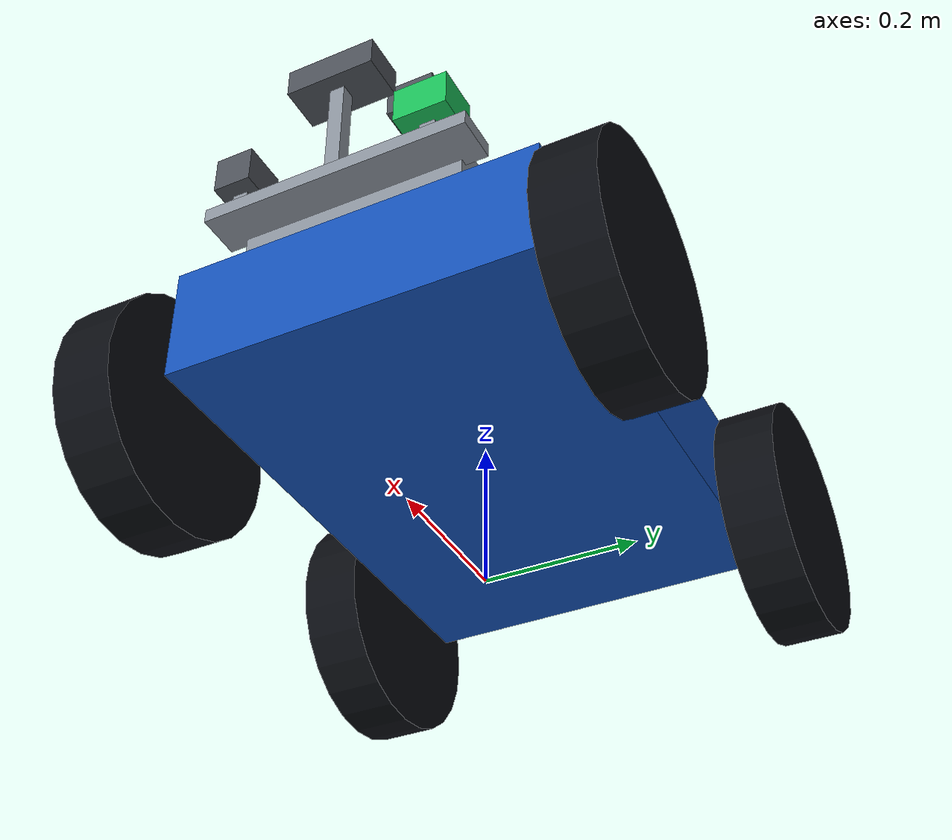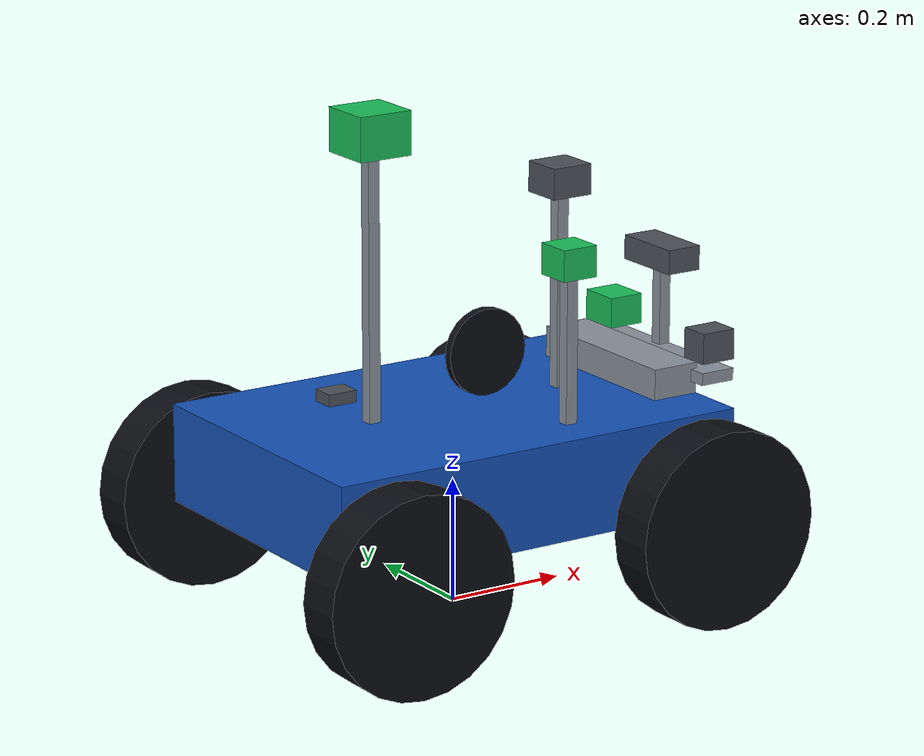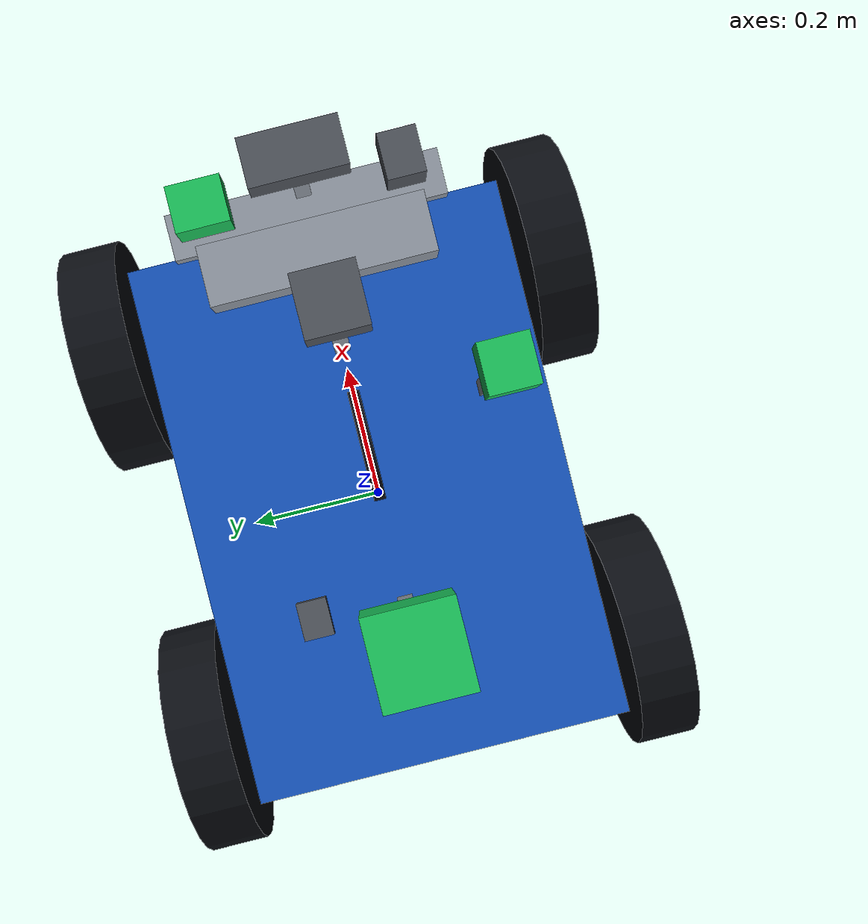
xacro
<?xml version="1.0"?>
<robot xmlns:xacro="http://www.ros.org/wiki/xacro" name="sensor_bot">
  <!-- 기존 4륜 Ackermann 차량에 센서를 조합한다. -->
  <xacro:include filename="$(find gazebo_tutorial_description)/urdf/macros/ackermann_rover.xacro"/>
  <xacro:include filename="$(find gazebo_tutorial_description)/urdf/sensors/sensor_common.xacro"/>
  <xacro:include filename="$(find gazebo_tutorial_description)/urdf/sensors/imu_sensor.xacro"/>
  <xacro:include filename="$(find gazebo_tutorial_description)/urdf/sensors/mono_rgb_camera.xacro"/>
  <xacro:include filename="$(find gazebo_tutorial_description)/urdf/sensors/stereo_camera.xacro"/>
  <xacro:include filename="$(find gazebo_tutorial_description)/urdf/sensors/rgbd_camera.xacro"/>
  <xacro:include filename="$(find gazebo_tutorial_description)/urdf/sensors/fisheye_camera.xacro"/>
  <xacro:include filename="$(find gazebo_tutorial_description)/urdf/sensors/lidar_2d.xacro"/>
  <xacro:include filename="$(find gazebo_tutorial_description)/urdf/sensors/lidar_3d.xacro"/>

  <xacro:arg name="sensor_profile" default="all"/>
  <xacro:property name="sensor_profile" value="$(arg sensor_profile)"/>
  <xacro:property name="enable_cameras"
    value="${sensor_profile == 'all' or sensor_profile == 'cameras'}"/>
  <xacro:property name="enable_lidars"
    value="${sensor_profile == 'all' or sensor_profile == 'lidars'}"/>

  <!-- rover_ackermann와 같은 앞바퀴 조향·뒷바퀴 구동 구조다.
       /cmd_vel의 angular.z는 조향각 [rad]이며 yaw rate가 아니다. -->
  <xacro:ackermann_rover/>

  <material name="sensor_gray">
    <color rgba="0.30 0.32 0.35 1.0"/>
  </material>
  <material name="sensor_green">
    <color rgba="0.10 0.75 0.35 1.0"/>
  </material>

  <!-- 센서 본체와 지지대는 시각 요소와 관성을 갖는다. 기존 센서 장착
       매크로처럼 충돌 형상은 생략하므로 라이다 광선을 스스로 가리지 않는다. -->
  <xacro:if value="${enable_cameras}">
    <xacro:sensor_mount_box
      link_name="camera_mount_rail_link" parent="base_link" xyz="0.38 0 0.11"
      size_x="0.06" size_y="0.36" size_z="0.02" color="rover_metal"/>
    <xacro:sensor_mount_box
      link_name="mono_camera_support_link" parent="base_link" xyz="0.40 -0.13 0.1225"
      size_x="0.02" size_y="0.02" size_z="0.005" color="rover_metal" mass="0.01"/>
    <xacro:sensor_mount_box
      link_name="rgbd_camera_support_link" parent="base_link" xyz="0.40 0.13 0.1225"
      size_x="0.02" size_y="0.02" size_z="0.005" color="rover_metal" mass="0.01"/>
    <xacro:sensor_mount_box
      link_name="stereo_camera_support_link" parent="base_link" xyz="0.40 0 0.185"
      size_x="0.02" size_y="0.02" size_z="0.13" color="rover_metal"/>
    <xacro:sensor_mount_box
      link_name="fisheye_camera_support_link" parent="base_link" xyz="0.10 -0.17 0.1975"
      size_x="0.02" size_y="0.02" size_z="0.235" color="rover_metal"/>
  </xacro:if>

  <xacro:if value="${enable_lidars}">
    <xacro:sensor_mount_box
      link_name="lidar_2d_support_link" parent="base_link" xyz="0.20 0 0.2375"
      size_x="0.02" size_y="0.02" size_z="0.315" color="rover_metal"/>
    <xacro:sensor_mount_box
      link_name="lidar_3d_support_link" parent="base_link" xyz="-0.15 0 0.2925"
      size_x="0.02" size_y="0.02" size_z="0.425" color="rover_metal"/>
  </xacro:if>

  <!-- IMU는 모든 프로필에서 사용한다. -->
  <xacro:gazebo_imu_sensor
    prefix="imu" parent="base_link" xyz="-0.14 0.12 0.09"
    topic="imu/data" update_rate="100.0"
    angular_stddev="0.0002" linear_stddev="0.017"/>

  <xacro:if value="${enable_cameras}">
    <xacro:gazebo_mono_rgb_camera
      prefix="camera" parent="base_link" xyz="0.40 -0.13 0.15"
      camera_name="camera" format="L8" update_rate="15.0"/>

    <xacro:gazebo_stereo_camera
      prefix="stereo_camera" parent="base_link" xyz="0.40 0 0.27"
      camera_name="stereo" baseline="0.08" update_rate="10.0"/>

    <xacro:gazebo_rgbd_camera
      prefix="rgbd_camera" parent="base_link" xyz="0.40 0.13 0.15"
      camera_name="rgbd" min_depth="0.10" max_depth="12.0" update_rate="10.0"/>

    <xacro:gazebo_fisheye_camera
      prefix="fisheye_camera" parent="base_link" xyz="0.10 -0.17 0.34"
      camera_name="fisheye" horizontal_fov="3.1415926535"
      lens_type="equidistant" env_texture_size="512" update_rate="10.0"/>
  </xacro:if>

  <xacro:if value="${enable_lidars}">
    <xacro:gazebo_lidar_2d
      prefix="lidar_2d" parent="base_link" xyz="0.20 0 0.42"
      topic="scan" samples="720" update_rate="15.0"/>

    <xacro:gazebo_lidar_3d
      prefix="lidar_3d" parent="base_link" xyz="-0.15 0 0.54"
      topic="points" horizontal_samples="360" vertical_samples="16"
      update_rate="10.0"/>
  </xacro:if>
</robot>

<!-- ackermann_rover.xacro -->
<robot xmlns:xacro="http://www.ros.org/wiki/xacro">
  <xacro:include filename="$(find gazebo_tutorial_description)/urdf/macros/rover_macros.xacro"/>

  <!-- 기본 주행 차량과 센서 차량이 차체, 바퀴, 조향, 구동 설정을 함께 사용한다. -->
  <xacro:macro name="ackermann_rover" params="">
    <xacro:rover_base body_mass="12.0"/>

    <!-- 앞바퀴는 수직축 조향 관절과 자유롭게 구르는 바퀴 관절로 나눈다. -->
    <xacro:steered_wheel
      prefix="front_left" parent="base_link"
      x="${rover_wheelbase / 2.0}" y="${rover_track_width / 2.0}" z="-0.08"/>
    <xacro:steered_wheel
      prefix="front_right" parent="base_link"
      x="${rover_wheelbase / 2.0}" y="-${rover_track_width / 2.0}" z="-0.08"/>

    <!-- 뒷바퀴는 플러그인의 토크로 구동한다. -->
    <xacro:fixed_axle_wheel
      prefix="rear_left" parent="base_link"
      x="-${rover_wheelbase / 2.0}" y="${rover_track_width / 2.0}" z="-0.08"/>
    <xacro:fixed_axle_wheel
      prefix="rear_right" parent="base_link"
      x="-${rover_wheelbase / 2.0}" y="-${rover_track_width / 2.0}" z="-0.08"/>

    <!-- steering_wheel_joint와 핸들 링크를 함께 정의하면 플러그인 시작 시
         "joint not found" 경고가 발생하지 않고 핸들의 움직임도 관찰할 수 있다. -->
    <link name="steering_wheel_link">
      <visual>
        <origin rpy="${PI / 2.0} 0 0"/>
        <geometry>
          <cylinder radius="0.07" length="0.015"/>
        </geometry>
        <material name="rover_dark"/>
      </visual>
      <xacro:wheel_inertial mass="0.05" radius="0.07" width="0.015"/>
    </link>
    <joint name="steering_wheel_joint" type="revolute">
      <parent link="base_link"/>
      <child link="steering_wheel_link"/>
      <origin xyz="0.06 0 0.16" rpy="0 0 0"/>
      <axis xyz="0 1 0"/>
      <limit lower="-7.85" upper="7.85" effort="1.0" velocity="10.0"/>
    </joint>

    <gazebo>
      <plugin name="rover_ackermann_drive" filename="libgazebo_ros_ackermann_drive.so">
        <ros>
          <namespace>/</namespace>
          <remapping>cmd_vel:=cmd_vel</remapping>
          <!-- 내장 오도메트리는 월드 좌표이므로 바퀴로 계산한 오도메트리와 구분한다. -->
          <remapping>odom:=ground_truth/odom</remapping>
        </ros>

        <!-- Humble의 gazebo_ros_ackermann_drive.cpp가 읽는 관절 이름 -->
        <front_left_joint>front_left_wheel_joint</front_left_joint>
        <front_right_joint>front_right_wheel_joint</front_right_joint>
        <rear_left_joint>rear_left_wheel_joint</rear_left_joint>
        <rear_right_joint>rear_right_wheel_joint</rear_right_joint>
        <left_steering_joint>front_left_steering_joint</left_steering_joint>
        <right_steering_joint>front_right_steering_joint</right_steering_joint>
        <steering_wheel_joint>steering_wheel_joint</steering_wheel_joint>

        <max_speed>2.0</max_speed>
        <max_steer>0.60</max_steer>
        <max_steering_angle>7.85</max_steering_angle>

        <left_steering_pid_gain>80 0 2</left_steering_pid_gain>
        <left_steering_i_range>0 0</left_steering_i_range>
        <right_steering_pid_gain>80 0 2</right_steering_pid_gain>
        <right_steering_i_range>0 0</right_steering_i_range>
        <linear_velocity_pid_gain>20 0 0.5</linear_velocity_pid_gain>
        <linear_velocity_i_range>0 0</linear_velocity_i_range>
        <update_rate>100</update_rate>

        <publish_odom>true</publish_odom>
        <!-- 별도 ackermann_odom 노드만 odom → base_footprint TF를 발행한다. -->
        <publish_odom_tf>false</publish_odom_tf>
        <publish_wheel_tf>false</publish_wheel_tf>
        <publish_distance>true</publish_distance>
        <odometry_frame>world</odometry_frame>
        <robot_base_frame>base_footprint</robot_base_frame>
        <covariance_x>0.001</covariance_x>
        <covariance_y>0.001</covariance_y>
        <covariance_yaw>0.01</covariance_yaw>
      </plugin>
    </gazebo>

    <gazebo>
      <plugin name="rover_ackermann_joint_states" filename="libgazebo_ros_joint_state_publisher.so">
        <ros>
          <namespace>/</namespace>
        </ros>
        <update_rate>50</update_rate>
        <joint_name>front_left_steering_joint</joint_name>
        <joint_name>front_right_steering_joint</joint_name>
        <joint_name>front_left_wheel_joint</joint_name>
        <joint_name>front_right_wheel_joint</joint_name>
        <joint_name>rear_left_wheel_joint</joint_name>
        <joint_name>rear_right_wheel_joint</joint_name>
        <joint_name>steering_wheel_joint</joint_name>
      </plugin>
    </gazebo>
  </xacro:macro>
</robot>

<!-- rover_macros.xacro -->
<robot xmlns:xacro="http://www.ros.org/wiki/xacro">
  <!-- 4륜 로버 두 모델이 공유하는 치수와 관성 매크로 -->
  <xacro:property name="rover_wheel_radius" value="0.16"/>
  <xacro:property name="rover_wheel_width" value="0.08"/>
  <xacro:property name="rover_track_width" value="0.62"/>
  <xacro:property name="rover_wheelbase" value="0.56"/>
  <xacro:property name="PI" value="3.141592653589793"/>

  <material name="rover_blue">
    <color rgba="0.08 0.32 0.72 1"/>
  </material>
  <material name="rover_dark">
    <color rgba="0.04 0.05 0.07 1"/>
  </material>
  <material name="rover_metal">
    <color rgba="0.55 0.58 0.62 1"/>
  </material>

  <xacro:macro name="box_inertial" params="mass x y z">
    <inertial>
      <mass value="${mass}"/>
      <inertia
        ixx="${mass * (y * y + z * z) / 12.0}"
        ixy="0.0"
        ixz="0.0"
        iyy="${mass * (x * x + z * z) / 12.0}"
        iyz="0.0"
        izz="${mass * (x * x + y * y) / 12.0}"/>
    </inertial>
  </xacro:macro>

  <!-- 실린더 geometry의 기본 대칭축은 local z축이다. visual/collision을 x축으로
       90도 돌리므로 관성도 대칭축이 rover의 y축을 향하도록 적는다. -->
  <xacro:macro name="wheel_inertial" params="mass radius width">
    <inertial>
      <mass value="${mass}"/>
      <inertia
        ixx="${mass * (3.0 * radius * radius + width * width) / 12.0}"
        ixy="0.0"
        ixz="0.0"
        iyy="${mass * radius * radius / 2.0}"
        iyz="0.0"
        izz="${mass * (3.0 * radius * radius + width * width) / 12.0}"/>
    </inertial>
  </xacro:macro>

  <xacro:macro name="rover_base" params="body_mass:=12.0">
    <!-- base_footprint는 바닥 투영점이며 질량/충돌이 없는 TF 전용 링크다. -->
    <link name="base_footprint"/>

    <link name="base_link">
      <visual>
        <geometry>
          <box size="0.72 0.50 0.16"/>
        </geometry>
        <material name="rover_blue"/>
      </visual>
      <collision>
        <geometry>
          <box size="0.72 0.50 0.16"/>
        </geometry>
      </collision>
      <xacro:box_inertial mass="${body_mass}" x="0.72" y="0.50" z="0.16"/>
    </link>

    <joint name="base_footprint_joint" type="fixed">
      <parent link="base_footprint"/>
      <child link="base_link"/>
      <origin xyz="0 0 0.24" rpy="0 0 0"/>
    </joint>

    <!-- 진행 방향(+x)을 쉽게 알아볼 수 있는 전방 표식 -->
    <link name="front_marker_link">
      <visual>
        <geometry>
          <box size="0.08 0.30 0.05"/>
        </geometry>
        <material name="rover_metal"/>
      </visual>
      <xacro:box_inertial mass="0.05" x="0.08" y="0.30" z="0.05"/>
    </link>
    <joint name="front_marker_joint" type="fixed">
      <parent link="base_link"/>
      <child link="front_marker_link"/>
      <origin xyz="0.32 0 0.105" rpy="0 0 0"/>
    </joint>
  </xacro:macro>

  <xacro:macro name="rover_wheel_link" params="name">
    <link name="${name}">
      <visual>
        <origin xyz="0 0 0" rpy="${PI / 2.0} 0 0"/>
        <geometry>
          <cylinder radius="${rover_wheel_radius}" length="${rover_wheel_width}"/>
        </geometry>
        <material name="rover_dark"/>
      </visual>
      <!-- Ackermann 플러그인은 wheel joint child의 첫 collision에서 반지름과
           바퀴 중심을 읽는다. 따라서 wheel link에는 collision을 정확히 하나 둔다. -->
      <collision>
        <origin xyz="0 0 0" rpy="${PI / 2.0} 0 0"/>
        <geometry>
          <cylinder radius="${rover_wheel_radius}" length="${rover_wheel_width}"/>
        </geometry>
      </collision>
      <xacro:wheel_inertial mass="0.8" radius="${rover_wheel_radius}" width="${rover_wheel_width}"/>
    </link>

    <gazebo reference="${name}">
      <material>Gazebo/Black</material>
      <mu1>1.2</mu1>
      <mu2>1.2</mu2>
      <kp>1000000.0</kp>
      <kd>10.0</kd>
      <minDepth>0.001</minDepth>
    </gazebo>
  </xacro:macro>

  <xacro:macro name="fixed_axle_wheel" params="prefix parent x y z">
    <xacro:rover_wheel_link name="${prefix}_wheel_link"/>
    <joint name="${prefix}_wheel_joint" type="continuous">
      <parent link="${parent}"/>
      <child link="${prefix}_wheel_link"/>
      <origin xyz="${x} ${y} ${z}" rpy="0 0 0"/>
      <axis xyz="0 1 0"/>
      <limit effort="40.0" velocity="30.0"/>
      <dynamics damping="0.05" friction="0.0"/>
    </joint>
  </xacro:macro>

  <xacro:macro name="steered_wheel" params="prefix parent x y z">
    <!-- URDF에는 universal joint가 없으므로 조향과 구름을 두 joint로 분리한다. -->
    <link name="${prefix}_steering_link">
      <visual>
        <geometry>
          <box size="0.06 0.06 0.10"/>
        </geometry>
        <material name="rover_metal"/>
      </visual>
      <collision>
        <geometry>
          <box size="0.06 0.06 0.10"/>
        </geometry>
      </collision>
      <xacro:box_inertial mass="0.15" x="0.06" y="0.06" z="0.10"/>
    </link>
    <joint name="${prefix}_steering_joint" type="revolute">
      <parent link="${parent}"/>
      <child link="${prefix}_steering_link"/>
      <origin xyz="${x} ${y} ${z}" rpy="0 0 0"/>
      <axis xyz="0 0 1"/>
      <!-- max_steer=0.60 rad일 때 안쪽 바퀴 목표각은 약 0.833 rad이다. -->
      <limit lower="-1.0" upper="1.0" effort="40.0" velocity="2.0"/>
      <dynamics damping="0.3" friction="0.1"/>
    </joint>

    <xacro:rover_wheel_link name="${prefix}_wheel_link"/>
    <joint name="${prefix}_wheel_joint" type="continuous">
      <parent link="${prefix}_steering_link"/>
      <child link="${prefix}_wheel_link"/>
      <origin xyz="0 0 0" rpy="0 0 0"/>
      <axis xyz="0 1 0"/>
      <limit effort="40.0" velocity="30.0"/>
      <dynamics damping="0.05" friction="0.0"/>
    </joint>
  </xacro:macro>

</robot>

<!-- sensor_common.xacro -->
<!-- Copyright 2026 gazebo-sim-tutorial-kr contributors (Apache-2.0) -->
<robot xmlns:xacro="http://www.ros.org/wiki/xacro">
  <!-- 센서 모듈이 공통으로 사용하는 장착 링크와 optical frame을 정의한다. -->
  <xacro:macro
    name="sensor_mount_box"
    params="link_name parent xyz rpy:='0 0 0' size_x:=0.05 size_y:=0.05 size_z:=0.05 color:='sensor_gray' mass:=0.05">
    <link name="${link_name}">
      <visual>
        <geometry>
          <box size="${size_x} ${size_y} ${size_z}"/>
        </geometry>
        <material name="${color}"/>
      </visual>
      <!-- 센서 링크에도 양의 질량과 관성을 두어 Gazebo의 물리 경고를 피한다. -->
      <inertial>
        <mass value="${mass}"/>
        <inertia
          ixx="${mass * (size_y * size_y + size_z * size_z) / 12.0}"
          ixy="0.0"
          ixz="0.0"
          iyy="${mass * (size_x * size_x + size_z * size_z) / 12.0}"
          iyz="0.0"
          izz="${mass * (size_x * size_x + size_y * size_y) / 12.0}"/>
      </inertial>
    </link>

    <joint name="${link_name}_joint" type="fixed">
      <parent link="${parent}"/>
      <child link="${link_name}"/>
      <origin xyz="${xyz}" rpy="${rpy}"/>
    </joint>
  </xacro:macro>

  <!-- REP-103 optical frame은 +Z 전방, +X 오른쪽, +Y 아래쪽을 사용한다. -->
  <xacro:macro name="sensor_optical_frame" params="frame_name parent xyz:='0 0 0'">
    <link name="${frame_name}"/>
    <joint name="${frame_name}_joint" type="fixed">
      <parent link="${parent}"/>
      <child link="${frame_name}"/>
      <origin xyz="${xyz}" rpy="${-pi / 2.0} 0 ${-pi / 2.0}"/>
    </joint>
  </xacro:macro>
</robot>
